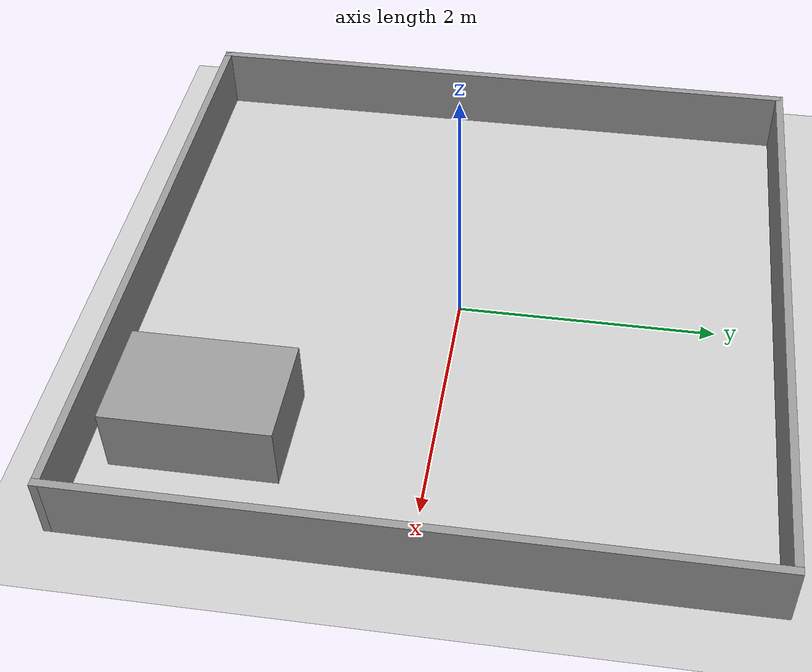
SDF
<sdf version="1.6">
 <world name="default">
  <light name="sun" type="directional">
   <pose>0 0 10 0 -0 0</pose>
   <diffuse>0.8 0.8 0.8 1</diffuse>
   <specular>0.2 0.2 0.2 1</specular>
   <attenuation>
    <range>1000</range>
    <constant>0.9</constant>
    <linear>0.01</linear>
    <quadratic>0.001</quadratic>
   </attenuation>
   <direction>-0.5 0.1 -0.9</direction>
  </light>
  <model name="ground_plane">
   <static>1</static>
   <link name="link">
    <collision name="collision">
     <geometry><plane><normal>0 0 1</normal><size>100 100</size></plane></geometry>
     <surface>
      <contact><collide_bitmask>65535</collide_bitmask></contact>
      <friction><ode><mu>100</mu><mu2>50</mu2></ode></friction>
     </surface>
    </collision>
    <visual name="visual">
     <cast_shadows>0</cast_shadows>
     <geometry><plane><normal>0 0 1</normal><size>100 100</size></plane></geometry>
     <material>
      <script><uri>file://media/materials/scripts/gazebo.material</uri><name>Gazebo/Grey</name></script>
     </material>
    </visual>
   </link>
  </model>
  <gravity>0 0 -9.8</gravity>
  <magnetic_field>6e-06 2.3e-05 -4.2e-05</magnetic_field>
  <atmosphere type="adiabatic"/>
  <physics name="default_physics" default="0" type="ode">
   <max_step_size>0.001</max_step_size>
   <real_time_factor>1</real_time_factor>
   <real_time_update_rate>1000</real_time_update_rate>
  </physics>
  <scene><ambient>0.4 0.4 0.4 1</ambient><background>0.7 0.7 0.7 1</background><shadows>1</shadows></scene>
  <audio><device>default</device></audio>
  <spherical_coordinates>
   <surface_model>EARTH_WGS84</surface_model>
   <latitude_deg>0</latitude_deg>
   <longitude_deg>0</longitude_deg>
   <elevation>0</elevation>
   <heading_deg>0</heading_deg>
  </spherical_coordinates>
  <model name="robot_cage">
   <link name="Wall_13">
    <collision name="Wall_13_Collision">
     <geometry><box><size>5.02 0.06 0.5</size></box></geometry>
     <pose>0 0 0.25 0 -0 0</pose>
    </collision>
    <visual name="Wall_13_Visual">
     <pose>0 0 0.25 0 -0 0</pose>
     <geometry><box><size>5.02 0.06 0.5</size></box></geometry>
     <material>
      <script><uri>file://media/materials/scripts/gazebo.material</uri><name>Gazebo/Grey</name></script>
      <ambient>1 1 1 1</ambient>
     </material>
     <meta><layer>0</layer></meta>
    </visual>
    <pose>2.48 0 0 0 -0 -1.5708</pose>
   </link>
   <link name="Wall_15">
    <collision name="Wall_15_Collision">
     <geometry><box><size>5.02 0.06 0.5</size></box></geometry>
     <pose>0 0 0.25 0 -0 0</pose>
    </collision>
    <visual name="Wall_15_Visual">
     <pose>0 0 0.25 0 -0 0</pose>
     <geometry><box><size>5.02 0.06 0.5</size></box></geometry>
     <material>
      <script><uri>file://media/materials/scripts/gazebo.material</uri><name>Gazebo/Grey</name></script>
      <ambient>1 1 1 1</ambient>
     </material>
     <meta><layer>0</layer></meta>
    </visual>
    <pose>0 -2.48 0 0 -0 0</pose>
   </link>
   <link name="Wall_17">
    <collision name="Wall_17_Collision">
     <geometry><box><size>5.02 0.06 0.5</size></box></geometry>
     <pose>0 0 0.25 0 -0 0</pose>
    </collision>
    <visual name="Wall_17_Visual">
     <pose>0 0 0.25 0 -0 0</pose>
     <geometry><box><size>5.02 0.06 0.5</size></box></geometry>
     <material>
      <script><uri>file://media/materials/scripts/gazebo.material</uri><name>Gazebo/Grey</name></script>
      <ambient>1 1 1 1</ambient>
     </material>
     <meta><layer>0</layer></meta>
    </visual>
    <pose>0 2.48 0 0 -0 0</pose>
   </link>
   <link name="Wall_7">
    <collision name="Wall_7_Collision">
     <geometry><box><size>5.02 0.06 0.5</size></box></geometry>
     <pose>0 0 0.25 0 -0 0</pose>
    </collision>
    <visual name="Wall_7_Visual">
     <pose>0 0 0.25 0 -0 0</pose>
     <geometry><box><size>5.02 0.06 0.5</size></box></geometry>
     <material>
      <script><uri>file://media/materials/scripts/gazebo.material</uri><name>Gazebo/Grey</name></script>
      <ambient>1 1 1 1</ambient>
     </material>
     <meta><layer>0</layer></meta>
    </visual>
    <pose>-2.48 0 0 0 -0 -1.5708</pose>
   </link>
   <static>1</static>
  </model>
  <model name="custom_box">
   <link name="link">
    <inertial>
     <mass>1</mass>
     <inertia>
      <ixx>0.166667</ixx>
      <ixy>0</ixy>
      <ixz>0</ixz>
      <iyy>0.166667</iyy>
      <iyz>0</iyz>
      <izz>0.166667</izz>
     </inertia>
    </inertial>
    <visual name="visual">
     <geometry><box><size>0.8 1.2 0.5</size></box></geometry>
     <material>
      <script><name>Gazebo/Grey</name><uri>file://media/materials/scripts/gazebo.material</uri></script>
      <shader type="vertex"><normal_map>__default__</normal_map></shader>
      <ambient>0.3 0.3 0.3 1</ambient>
      <diffuse>0.7 0.7 0.7 1</diffuse>
      <specular>0.01 0.01 0.01 1</specular>
      <emissive>0 0 0 1</emissive>
     </material>
    </visual>
    <collision name="collision">
     <geometry><box><size>0.8 1.2 0.5</size></box></geometry>
     <surface>
      <friction>
       <ode><mu>1</mu><mu2>1</mu2><fdir1>0 0 0</fdir1><slip1>0</slip1><slip2>0</slip2></ode>
       <torsional>
        <coefficient>1</coefficient>
        <patch_radius>0</patch_radius>
        <surface_radius>0</surface_radius>
        <use_patch_radius>1</use_patch_radius>
        <ode><slip>0</slip></ode>
       </torsional>
      </friction>
      <bounce><restitution_coefficient>0</restitution_coefficient><threshold>1e+06</threshold></bounce>
      <contact>
       <collide_without_contact>0</collide_without_contact>
       <collide_without_contact_bitmask>1</collide_without_contact_bitmask>
       <collide_bitmask>1</collide_bitmask>
       <ode>
        <soft_cfm>0</soft_cfm>
        <soft_erp>0.2</soft_erp>
        <kp>1e+13</kp>
        <kd>1</kd>
        <max_vel>0.01</max_vel>
        <min_depth>0</min_depth>
       </ode>
       <bullet>
        <split_impulse>1</split_impulse>
        <split_impulse_penetration_threshold>-0.01</split_impulse_penetration_threshold>
        <soft_cfm>0</soft_cfm>
        <soft_erp>0.2</soft_erp>
        <kp>1e+13</kp>
        <kd>1</kd>
       </bullet>
      </contact>
     </surface>
    </collision>
   </link>
   <static>0</static>
   <pose>1.68 -1.55 0.5 0 -0 0</pose>
  </model>
 </world>
</sdf>
